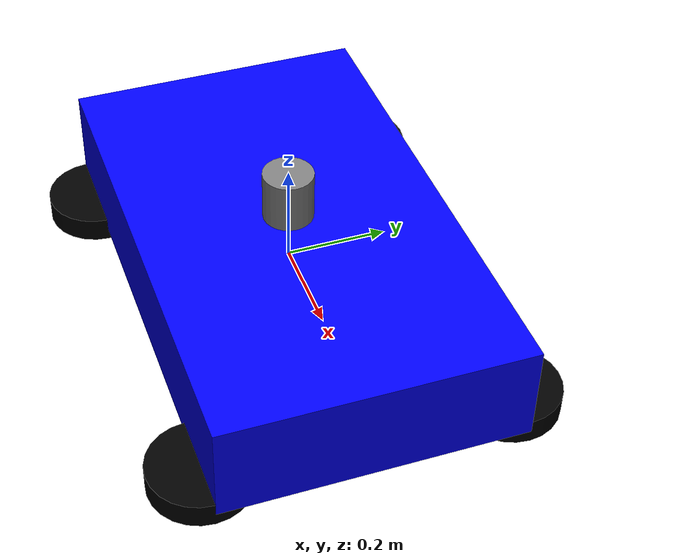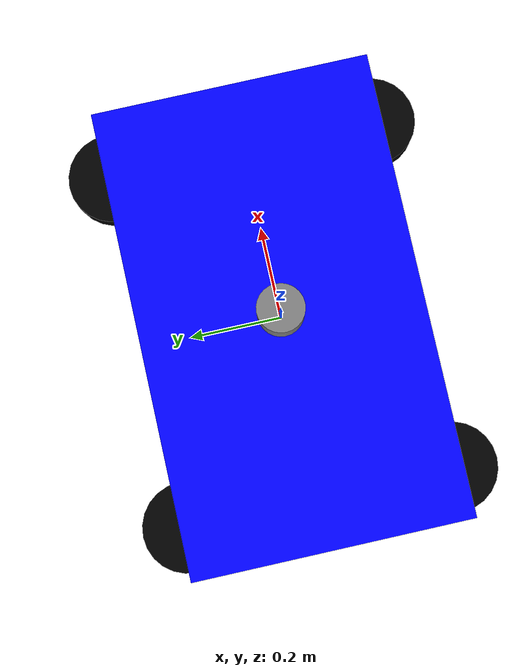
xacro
<?xml version="1.0"?>
<robot xmlns:xacro="http://ros.org/wiki/xacro" name="my_robot">
<material name="black">
  <color rgba="0 0 0 1"/>
</material>

<material name="grey">
  <color rgba="0.5 0.5 0.5 1"/>
</material>

<material name="blue">
  <color rgba="0 0 1 1"/>
</material>

  <!-- Base link -->
  <link name="base_link">
    <visual>
      <geometry>
        <box size="1 0.6 0.2"/> <!-- length x width x height -->
      </geometry>
      <material name="blue"/>
    </visual>
  </link>

  <!-- ================= Wheels ================= -->

  <!-- Front Left Wheel -->
  <link name="front_left_wheel">
    <visual>
      <geometry>
        <cylinder radius="0.1" length="0.05"/>
      </geometry>
      <material name="black"/>
    </visual>
  </link>

  <joint name="front_left_wheel_joint" type="continuous">
    <parent link="base_link"/>
    <child link="front_left_wheel"/>
    <origin xyz="0.4 0.3 -0.1" rpy="0 0 0"/>
    <axis xyz="0 1 0"/>
  </joint>

  <!-- Front Right Wheel -->
  <link name="front_right_wheel">
    <visual>
      <geometry>
        <cylinder radius="0.1" length="0.05"/>
      </geometry>
      <material name="black"/>
    </visual>
  </link>

  <joint name="front_right_wheel_joint" type="continuous">
    <parent link="base_link"/>
    <child link="front_right_wheel"/>
    <origin xyz="0.4 -0.3 -0.1" rpy="0 0 0"/>
    <axis xyz="0 1 0"/>
  </joint>

  <!-- Rear Left Wheel -->
  <link name="rear_left_wheel">
    <visual>
      <geometry>
        <cylinder radius="0.1" length="0.05"/>
      </geometry>
      <material name="black"/>
    </visual>
  </link>

  <joint name="rear_left_wheel_joint" type="continuous">
    <parent link="base_link"/>
    <child link="rear_left_wheel"/>
    <origin xyz="-0.4 0.3 -0.1" rpy="0 0 0"/>
    <axis xyz="0 1 0"/>
  </joint>

  <!-- Rear Right Wheel -->
  <link name="rear_right_wheel">
    <visual>
      <geometry>
        <cylinder radius="0.1" length="0.05"/>
      </geometry>
      <material name="black"/>
    </visual>
  </link>

  <joint name="rear_right_wheel_joint" type="continuous">
    <parent link="base_link"/>
    <child link="rear_right_wheel"/>
    <origin xyz="-0.4 -0.3 -0.1" rpy="0 0 0"/>
    <axis xyz="0 1 0"/>
  </joint>

  <!-- ================= LiDAR Sensor ================= -->
  <link name="lidar">
    <visual>
      <geometry>
        <cylinder radius="0.05" length="0.1"/>
      </geometry>
      <material name="grey"/>
    </visual>
  </link>

  <joint name="lidar_joint" type="fixed">
    <parent link="base_link"/>
    <child link="lidar"/>
    <origin xyz="0 0 0.15" rpy="0 0 0"/>
  </joint>

</robot>
